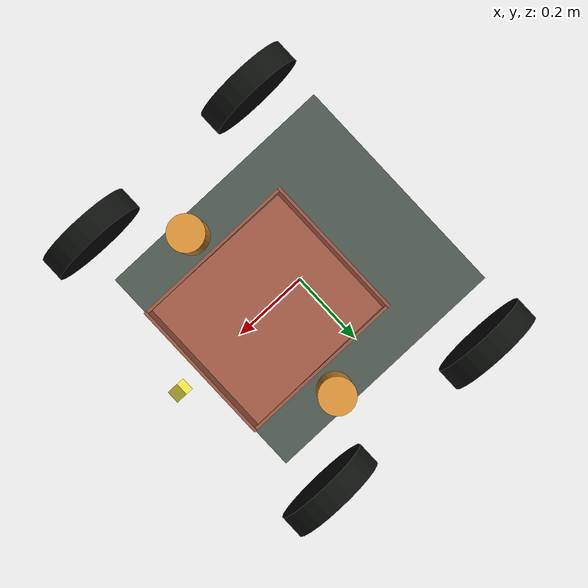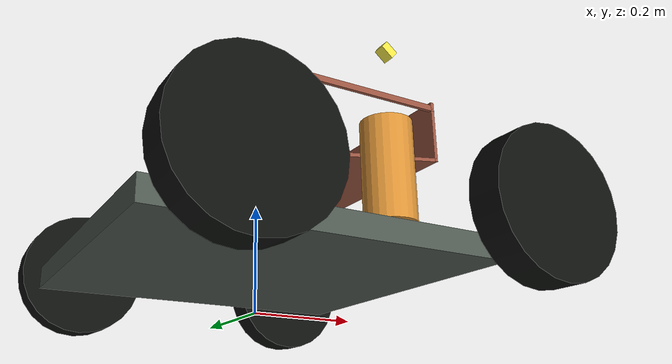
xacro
<?xml version="1.0"?>
<robot xmlns:xacro="http://www.ros.org/wiki/xacro" name="figbot_p0_rover">
  <!-- Rev-G packaging proxy. Basket dimensions remain from DEC-028; arm placement is DEC-031. -->
  <xacro:property name="wheel_radius" value="0.127"/>
  <xacro:property name="wheel_width" value="0.060"/>
  <xacro:property name="wheelbase" value="0.510"/>
  <xacro:property name="front_axle_x" value="0.290"/>
  <xacro:property name="rear_axle_x" value="-0.220"/>
  <xacro:property name="track" value="0.830"/>
  <xacro:property name="basket_slope" value="-0.139626"/>

  <material name="frame"><color rgba="0.30 0.34 0.31 1"/></material>
  <material name="wheel"><color rgba="0.05 0.06 0.05 1"/></material>
  <material name="arm"><color rgba="0.85 0.57 0.21 1"/></material>
  <material name="basket"><color rgba="0.60 0.33 0.25 1"/></material>

  <link name="base_link">
    <visual><origin xyz="0 0 0.090"/><geometry><box size="0.650 0.600 0.042"/></geometry><material name="frame"/></visual>
    <collision><origin xyz="0 0 0.090"/><geometry><box size="0.650 0.600 0.042"/></geometry></collision>
    <inertial><origin xyz="-0.05 0 0.10"/><mass value="35"/><inertia ixx="0.65" ixy="0" ixz="0" iyy="1.10" iyz="0" izz="1.55"/></inertial>
  </link>

  <xacro:macro name="rear_wheel" params="side y">
    <link name="rear_${side}_wheel">
      <visual><geometry><cylinder radius="${wheel_radius}" length="${wheel_width}"/></geometry><material name="wheel"/></visual>
      <collision><geometry><cylinder radius="${wheel_radius}" length="${wheel_width}"/></geometry></collision>
      <inertial><mass value="2.0"/><inertia ixx="0.017" ixy="0" ixz="0" iyy="0.017" iyz="0" izz="0.004"/></inertial>
    </link>
    <joint name="rear_${side}_wheel_joint" type="continuous">
      <parent link="base_link"/><child link="rear_${side}_wheel"/>
      <origin xyz="${rear_axle_x} ${y} ${wheel_radius}" rpy="${pi/2} 0 0"/><axis xyz="0 0 1"/>
      <dynamics damping="0.1" friction="0.05"/>
    </joint>
  </xacro:macro>

  <xacro:macro name="front_wheel" params="side y">
    <link name="front_${side}_knuckle"><inertial><mass value="0.8"/><inertia ixx="0.003" ixy="0" ixz="0" iyy="0.003" iyz="0" izz="0.003"/></inertial></link>
    <joint name="front_${side}_steering_joint" type="revolute">
      <parent link="base_link"/><child link="front_${side}_knuckle"/>
      <origin xyz="${front_axle_x} ${y} ${wheel_radius}"/><axis xyz="0 0 1"/>
      <limit lower="-0.523599" upper="0.523599" effort="1000" velocity="0.7"/>
    </joint>
    <link name="front_${side}_wheel">
      <visual><origin rpy="${pi/2} 0 0"/><geometry><cylinder radius="${wheel_radius}" length="${wheel_width}"/></geometry><material name="wheel"/></visual>
      <collision><origin rpy="${pi/2} 0 0"/><geometry><cylinder radius="${wheel_radius}" length="${wheel_width}"/></geometry></collision>
      <inertial><mass value="2.0"/><inertia ixx="0.017" ixy="0" ixz="0" iyy="0.017" iyz="0" izz="0.004"/></inertial>
    </link>
    <joint name="front_${side}_wheel_joint" type="continuous">
      <parent link="front_${side}_knuckle"/><child link="front_${side}_wheel"/><axis xyz="0 1 0"/>
      <dynamics damping="0.1" friction="0.05"/>
    </joint>
  </xacro:macro>

  <xacro:rear_wheel side="left" y="${track/2}"/>
  <xacro:rear_wheel side="right" y="${-track/2}"/>
  <xacro:front_wheel side="left" y="${track/2}"/>
  <xacro:front_wheel side="right" y="${-track/2}"/>

  <!-- Wall envelope plus explicit front-high/rear-low floor proxy. -->
  <link name="basket_link">
    <visual><origin xyz="-0.1965 0 0.090"/><geometry><box size="0.007 0.350 0.180"/></geometry><material name="basket"/></visual>
    <visual><origin xyz="0.1965 0 0.1181"/><geometry><box size="0.007 0.350 0.1238"/></geometry><material name="basket"/></visual>
    <visual><origin xyz="0 0.1715 0.168"/><geometry><box size="0.400 0.007 0.012"/></geometry><material name="basket"/></visual>
    <visual><origin xyz="0 -0.1715 0.168"/><geometry><box size="0.400 0.007 0.012"/></geometry><material name="basket"/></visual>
  </link>
  <joint name="basket_joint" type="fixed"><parent link="base_link"/><child link="basket_link"/><origin xyz="0.100 0 0.232"/></joint>
  <link name="basket_sloped_floor_link">
    <visual><geometry><box size="0.400 0.350 0.007"/></geometry><material name="basket"/></visual>
    <collision><geometry><box size="0.400 0.350 0.007"/></geometry></collision>
  </link>
  <joint name="basket_sloped_floor_joint" type="fixed">
    <parent link="base_link"/><child link="basket_sloped_floor_link"/>
    <origin xyz="0.100 0 0.2636" rpy="0 ${basket_slope} 0"/>
  </joint>

  <xacro:macro name="arm_proxy" params="side y">
    <link name="${side}_arm_proxy_link"><visual><origin xyz="0 0 0.090"/><geometry><cylinder radius="0.045" length="0.180"/></geometry><material name="arm"/></visual></link>
    <joint name="${side}_arm_proxy_joint" type="fixed"><parent link="base_link"/><child link="${side}_arm_proxy_link"/><origin xyz="0.120 ${y} 0.117"/></joint>
  </xacro:macro>
  <xacro:arm_proxy side="left" y="0.250"/>
  <xacro:arm_proxy side="right" y="-0.250"/>
  <link name="camera_link"><visual><geometry><box size="0.035 0.028 0.022"/></geometry></visual></link>
  <joint name="camera_joint" type="fixed"><parent link="base_link"/><child link="camera_link"/><origin xyz="0.330 0 0.625" rpy="0 0.7 0"/></joint>

  <ros2_control name="P0MockSystem" type="system">
    <hardware><plugin>mock_components/GenericSystem</plugin></hardware>
    <joint name="front_left_steering_joint"><command_interface name="position"/><state_interface name="position"/></joint>
    <joint name="front_right_steering_joint"><command_interface name="position"/><state_interface name="position"/></joint>
    <joint name="rear_left_wheel_joint"><command_interface name="velocity"/><state_interface name="velocity"/></joint>
    <joint name="rear_right_wheel_joint"><command_interface name="velocity"/><state_interface name="velocity"/></joint>
  </ros2_control>
</robot>
